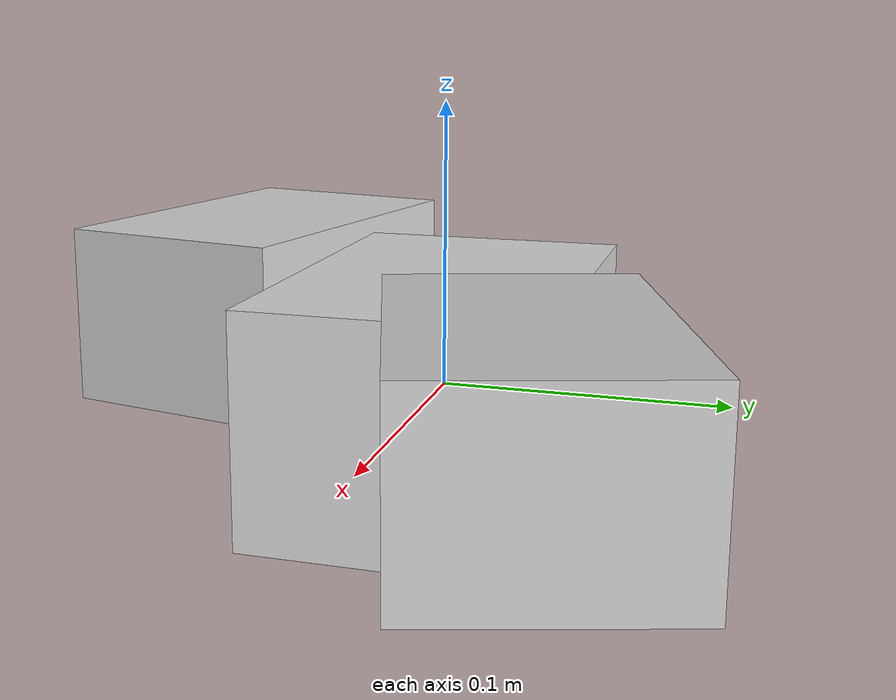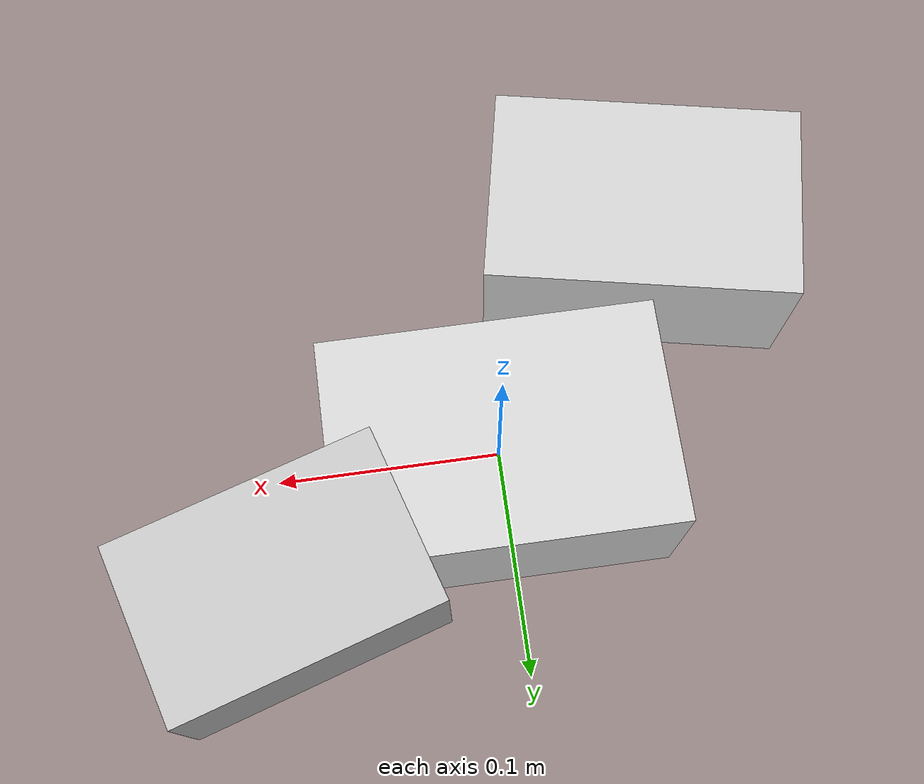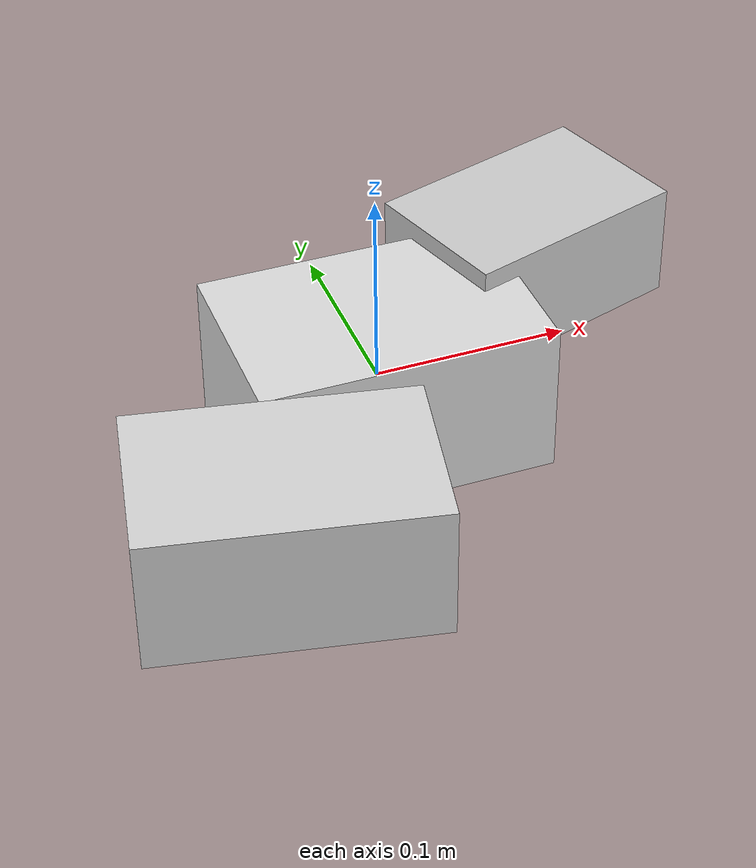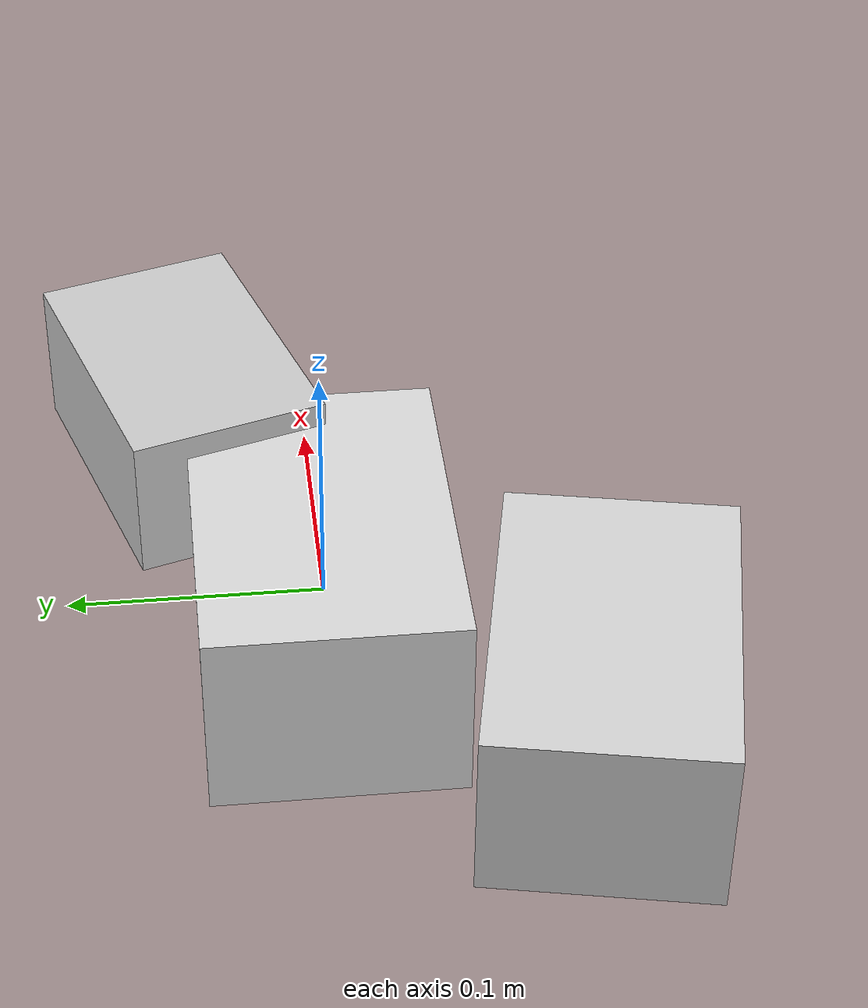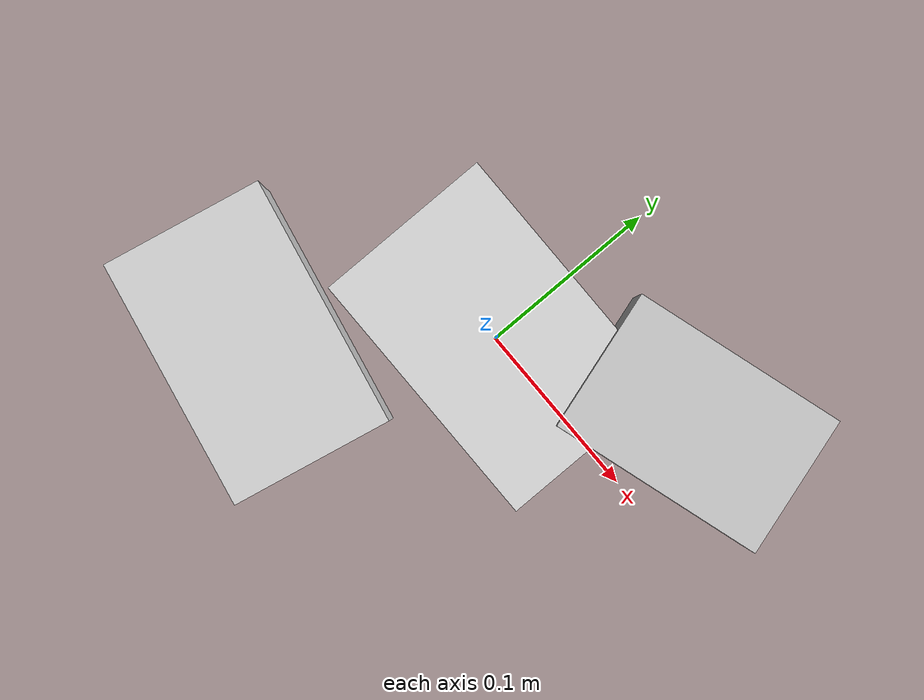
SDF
<?xml version="1.0" ?>
<sdf version="1.9">
  <model name="rubble_pvc">
    <link name="link">
      <visual name="rubble_1">
        <geometry><box><size>0.15 0.1 0.08</size></box></geometry>
        <material><ambient>0.86 0.86 0.86</ambient><diffuse>0.86 0.86 0.86</diffuse><shader type="pixel"/></material>
      </visual>
      <visual name="rubble_2">
        <pose>0.1 0.05 0.02 0 0 0.3</pose>
        <geometry><box><size>0.12 0.08 0.06</size></box></geometry>
        <material><ambient>0.80 0.80 0.80</ambient><diffuse>0.80 0.80 0.80</diffuse><shader type="pixel"/></material>
      </visual>
      <visual name="rubble_3">
        <pose>-0.08 -0.1 0.01 0 0 -0.2</pose>
        <geometry><box><size>0.14 0.09 0.07</size></box></geometry>
        <material><ambient>0.84 0.84 0.84</ambient><diffuse>0.84 0.84 0.84</diffuse><shader type="pixel"/></material>
      </visual>
      <collision name="collision">
        <geometry><box><size>0.3 0.25 0.15</size></box></geometry>
      </collision>
    </link>
  </model>
</sdf>
